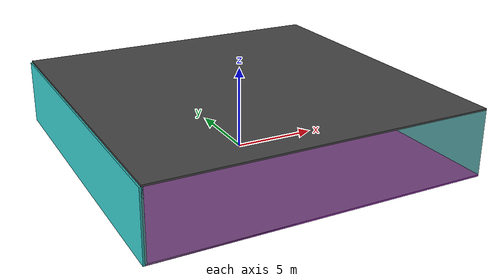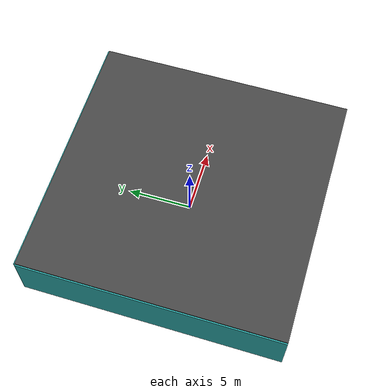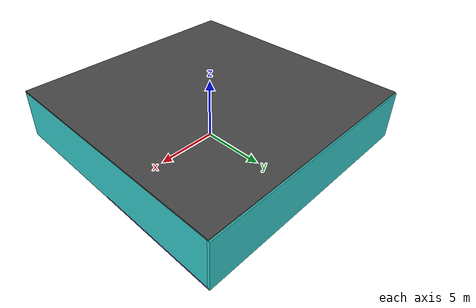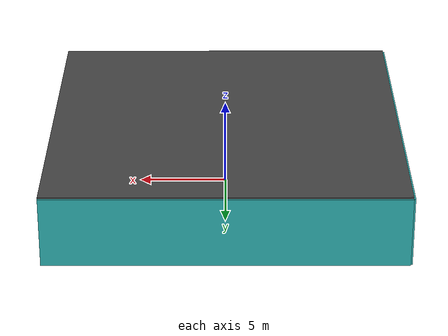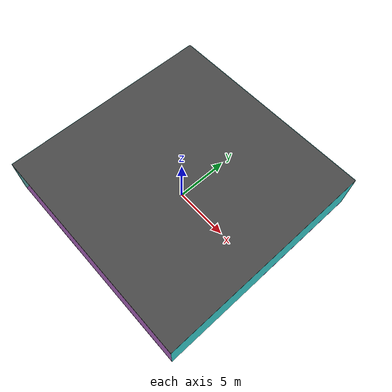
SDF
<sdf version="1.4">
 <world name="default">
  <physics type="ode">
   <max_step_size>0.001</max_step_size>
   <real_time_factor>1</real_time_factor>
   <real_time_update_rate>1000</real_time_update_rate>
   <gravity>0 0 -9.8</gravity>
  </physics>
  <scene><ambient>0.4 0.4 0.4 1</ambient><background>0.7 0.7 0.7 1</background><shadows>1</shadows></scene>
  <model name="Surrounding">
   <static>1</static>
   <link name="Ceiling">
    <collision name="Ceiling_Collision"><geometry><box><size>20 20 0.1</size></box></geometry></collision>
    <visual name="Ceiling_Visual">
     <geometry><box><size>20 20 0.1</size></box></geometry>
     <material>
      <script><uri>file://media/materials/scripts/gazebo.material</uri><name>Gazebo/Road</name></script>
     </material>
    </visual>
    <pose>0 0 4.05 0 0 0</pose>
   </link>
   <link name="Wall_South">
    <collision name="Wall_South_Collision">
     <geometry><box><size>20 0 4</size></box></geometry>
     <pose>0 0 2 0 -0 0</pose>
    </collision>
    <visual name="Wall_South_Visual">
     <pose>0 0 2 0 -0 0</pose>
     <geometry><box><size>20 0 4</size></box></geometry>
     <material>
      <script><uri>file://media/materials/scripts/gazebo.material</uri><name>Gazebo/GreyTransparent</name></script>
     </material>
    </visual>
    <velocity_decay><linear>0</linear><angular>0</angular></velocity_decay>
    <pose>0 -10 0 0 -0 0</pose>
   </link>
   <link name="Wall_East">
    <collision name="Wall_21_Collision">
     <geometry><box><size>20 0 4</size></box></geometry>
     <pose>0 0 2 0 -0 0</pose>
    </collision>
    <visual name="Wall_21_Visual">
     <pose>0 0 2 0 -0 0</pose>
     <geometry><box><size>20 0 4</size></box></geometry>
     <material>
      <script>
       <uri>file://media/materials/scripts/gazebo.material</uri>
       <name>Gazebo/TurquoiseGlowOutline</name>
      </script>
     </material>
    </visual>
    <velocity_decay><linear>0</linear><angular>0</angular></velocity_decay>
    <pose>10 0 0 0 -0 1.5708</pose>
   </link>
   <link name="Wall_North">
    <collision name="Wall_22_Collision">
     <geometry><box><size>20 0.2 4</size></box></geometry>
     <pose>0 0 2 0 -0 0</pose>
    </collision>
    <visual name="Wall_22_Visual">
     <pose>0 0 2 0 -0 0</pose>
     <geometry><box><size>20 0.2 4</size></box></geometry>
     <material>
      <script>
       <uri>file://media/materials/scripts/gazebo.material</uri>
       <name>Gazebo/TurquoiseGlowOutline</name>
      </script>
     </material>
    </visual>
    <velocity_decay><linear>0</linear><angular>0</angular></velocity_decay>
    <pose>0 10 0 0 -0 0</pose>
   </link>
   <link name="Wall_West">
    <collision name="Wall_23_Collision">
     <geometry><box><size>20 0.2 4</size></box></geometry>
     <pose>0 0 2 0 -0 0</pose>
    </collision>
    <visual name="Wall_23_Visual">
     <pose>0 0 2 0 -0 0</pose>
     <geometry><box><size>20 0.2 4</size></box></geometry>
     <material>
      <script>
       <uri>file://media/materials/scripts/gazebo.material</uri>
       <name>Gazebo/TurquoiseGlowOutline</name>
      </script>
     </material>
    </visual>
    <velocity_decay><linear>0</linear><angular>0</angular></velocity_decay>
    <pose>-10 0 0 0 0 -1.5708</pose>
   </link>
   <link name="Ground_link">
    <collision name="collision">
     <pose>0 0 .05 0 -0 0</pose>
     <geometry><box><size>20 20 0.1</size></box></geometry>
    </collision>
    <visual name="visual">
     <pose>0 0 .05 0 -0 0</pose>
     <geometry><box><size>20 20 0.1</size></box></geometry>
     <material>
      <script><uri>file://media/materials/scripts/gazebo.material</uri><name>Gazebo/PurpleGlow</name></script>
     </material>
    </visual>
   </link>
   <static>1</static>
  </model>
  <spherical_coordinates>
   <surface_model>EARTH_WGS84</surface_model>
   <latitude_deg>0</latitude_deg>
   <longitude_deg>0</longitude_deg>
   <elevation>0</elevation>
   <heading_deg>0</heading_deg>
  </spherical_coordinates>
  <light name="lightball_0" type="diffuse">
   <diffuse>0.8 0.8 0.8 1</diffuse>
   <specular>0.2 0.2 0.2 1</specular>
   <attenuation>
    <range>100</range>
    <constant>0.7</constant>
    <linear>0.01</linear>
    <quadratic>0.001</quadratic>
   </attenuation>
   <direction>-0.5 0.1 -0.9</direction>
   <pose>-6.33862992842 -1.30581812184 3.81801534282 0 0 0</pose>
  </light>
  <light name="lightball_1" type="diffuse">
   <diffuse>0.8 0.8 0.8 1</diffuse>
   <specular>0.2 0.2 0.2 1</specular>
   <attenuation>
    <range>100</range>
    <constant>0.7</constant>
    <linear>0.01</linear>
    <quadratic>0.001</quadratic>
   </attenuation>
   <direction>-0.5 0.1 -0.9</direction>
   <pose>9.23544801296 -4.5773940414 2.24529363592 0 0 0</pose>
  </light>
  <light name="lightball_2" type="diffuse">
   <diffuse>0.8 0.8 0.8 1</diffuse>
   <specular>0.2 0.2 0.2 1</specular>
   <attenuation>
    <range>100</range>
    <constant>0.7</constant>
    <linear>0.01</linear>
    <quadratic>0.001</quadratic>
   </attenuation>
   <direction>-0.5 0.1 -0.9</direction>
   <pose>-5.65257102474 -6.9161558224 2.29655629889 0 0 0</pose>
  </light>
  <light name="lightball_3" type="diffuse">
   <diffuse>0.8 0.8 0.8 1</diffuse>
   <specular>0.2 0.2 0.2 1</specular>
   <attenuation>
    <range>100</range>
    <constant>0.7</constant>
    <linear>0.01</linear>
    <quadratic>0.001</quadratic>
   </attenuation>
   <direction>-0.5 0.1 -0.9</direction>
   <pose>-2.58172265167 9.64015404992 2.11245981117 0 0 0</pose>
  </light>
  <light name="lightball_4" type="diffuse">
   <diffuse>0.8 0.8 0.8 1</diffuse>
   <specular>0.2 0.2 0.2 1</specular>
   <attenuation>
    <range>100</range>
    <constant>0.7</constant>
    <linear>0.01</linear>
    <quadratic>0.001</quadratic>
   </attenuation>
   <direction>-0.5 0.1 -0.9</direction>
   <pose>8.27926429337 9.52895446055 1.99885277685 0 0 0</pose>
  </light>
  <light name="lightball_5" type="diffuse">
   <diffuse>0.8 0.8 0.8 1</diffuse>
   <specular>0.2 0.2 0.2 1</specular>
   <attenuation>
    <range>100</range>
    <constant>0.7</constant>
    <linear>0.01</linear>
    <quadratic>0.001</quadratic>
   </attenuation>
   <direction>-0.5 0.1 -0.9</direction>
   <pose>-5.82156364919 -2.95161379467 3.89493562523 0 0 0</pose>
  </light>
  <light name="lightball_6" type="diffuse">
   <diffuse>0.8 0.8 0.8 1</diffuse>
   <specular>0.2 0.2 0.2 1</specular>
   <attenuation>
    <range>100</range>
    <constant>0.7</constant>
    <linear>0.01</linear>
    <quadratic>0.001</quadratic>
   </attenuation>
   <direction>-0.5 0.1 -0.9</direction>
   <pose>9.67209870447 9.14943462524 2.10729574962 0 0 0</pose>
  </light>
  <light name="lightball_7" type="diffuse">
   <diffuse>0.8 0.8 0.8 1</diffuse>
   <specular>0.2 0.2 0.2 1</specular>
   <attenuation>
    <range>100</range>
    <constant>0.7</constant>
    <linear>0.01</linear>
    <quadratic>0.001</quadratic>
   </attenuation>
   <direction>-0.5 0.1 -0.9</direction>
   <pose>3.07299232809 -2.73913151546 2.55626312968 0 0 0</pose>
  </light>
  <light name="lightball_8" type="diffuse">
   <diffuse>0.8 0.8 0.8 1</diffuse>
   <specular>0.2 0.2 0.2 1</specular>
   <attenuation>
    <range>100</range>
    <constant>0.7</constant>
    <linear>0.01</linear>
    <quadratic>0.001</quadratic>
   </attenuation>
   <direction>-0.5 0.1 -0.9</direction>
   <pose>-3.08041238305 -8.73029534897 0.821475222025 0 0 0</pose>
  </light>
  <include><uri>model://cabinet</uri><pose>-0.301530056291 -1.79709150514 0 0 0 0.892536934957</pose></include>
  <include><uri>model://table</uri><pose>-0.319549519225 8.13921897219 0 0 0 2.247997386</pose></include>
  <include>
   <uri>model://construction_cone</uri>
   <pose>1.88709651494 4.04895419131 0 0 0 2.06745548507</pose>
  </include>
  <include>
   <uri>model://textured_shapes</uri>
   <pose>5.31957308874 2.64666499932 0 0 0 2.74604918664</pose>
  </include>
 </world>
</sdf>

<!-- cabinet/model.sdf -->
<sdf version="1.5">
  <model name="cabinet">
    <static>true</static>
    <link name="cabinet_bottom_plate">
      <inertial>
        <pose>0 0 -1 0 0 0</pose>
        <inertia>
          <ixx>2.050000</ixx>
          <ixy>0</ixy>
          <ixz>0</ixz>
          <iyy>2.050000</iyy>
          <iyz>0</iyz>
          <izz>2.050000</izz>
        </inertia>
        <mass>25.000000</mass>
      </inertial>
      <collision name="cabinet_bottom_plate_geom">
        <pose>0 0 0.010000 0 0 0</pose>
        <geometry>
          <box>
            <size>0.450000 0.450000 0.020000</size>
          </box>
        </geometry>
      </collision>
      <visual name="cabinet_bottom_plate_geom_visual">
        <pose>0 0 0.010000 0 0 0</pose>
        <geometry>
          <box>
            <size>0.450000 0.450000 0.020000</size>
          </box>
        </geometry>
        <material>
          <script>
            <uri>model://media/materials/scripts/gazebo.material</uri>
            <name>Gazebo/Wood</name>
          </script>
        </material>
      </visual>
      <collision name="cabinet_bottom_plate_geom_cabinet_back_plate">
        <pose>0.235000 0 0.510000 0 0 0</pose>
        <geometry>
          <box>
            <size>0.020000 0.450000 1.020000</size>
          </box>
        </geometry>
      </collision>
      <visual name="cabinet_bottom_plate_geom_cabinet_back_plate_visual">
        <pose>0.235000 0 0.510000 0 0 0</pose>
        <geometry>
          <box>
            <size>0.020000 0.450000 1.020000</size>
          </box>
        </geometry>
        <material>
          <script>
            <uri>model://media/materials/scripts/gazebo.material</uri>
            <name>Gazebo/Wood</name>
          </script>
        </material>
      </visual>
      <collision name="cabinet_bottom_plate_geom_cabinet_left_plate">
        <pose>0 0.235000 0.510000 0 0 0</pose>
        <geometry>
          <box>
            <size>0.450000 0.020000 1.020000</size>
          </box>
        </geometry>
      </collision>
      <visual name="cabinet_bottom_plate_geom_cabinet_left_plate_visual">
        <pose>0 0.235000 0.510000 0 0 0</pose>
        <geometry>
          <box>
            <size>0.450000 0.020000 1.020000</size>
          </box>
        </geometry>
        <material>
          <script>
            <uri>model://media/materials/scripts/gazebo.material</uri>
            <name>Gazebo/Wood</name>
          </script>
        </material>
      </visual>
      <collision name="cabinet_bottom_plate_geom_cabinet_middle_plate">
        <pose>0 0 0.510000 0 0 0</pose>
        <geometry>
          <box>
            <size>0.450000 0.450000 0.020000</size>
          </box>
        </geometry>
      </collision>
      <visual name="cabinet_bottom_plate_geom_cabinet_middle_plate_visual">
        <pose>0 0 0.510000 0 0 0</pose>
        <geometry>
          <box>
            <size>0.450000 0.450000 0.020000</size>
          </box>
        </geometry>
        <material>
          <script>
            <uri>model://media/materials/scripts/gazebo.material</uri>
            <name>Gazebo/Wood</name>
          </script>
        </material>
      </visual>
      <collision name="cabinet_bottom_plate_geom_cabinet_right_plate">
        <pose>0 -0.235000 0.510000 0 0 0</pose>
        <geometry>
          <box>
            <size>0.450000 0.020000 1.020000</size>
          </box>
        </geometry>
      </collision>
      <visual name="cabinet_bottom_plate_geom_cabinet_right_plate_visual">
        <pose>0 -0.235000 0.510000 0 0 0</pose>
        <geometry>
          <box>
            <size>0.450000 0.020000 1.020000</size>
          </box>
        </geometry>
        <material>
          <script>
            <uri>model://media/materials/scripts/gazebo.material</uri>
            <name>Gazebo/Wood</name>
          </script>
        </material>
      </visual>
      <collision name="cabinet_bottom_plate_geom_cabinet_top_plate">
        <pose>0 0 1.010000 0 0 0</pose>
        <geometry>
          <box>
            <size>0.450000 0.450000 0.020000</size>
          </box>
        </geometry>
      </collision>
      <visual name="cabinet_bottom_plate_geom_cabinet_top_plate_visual">
        <pose>0 0 1.010000 0 0 0</pose>
        <geometry>
          <box>
            <size>0.450000 0.450000 0.020000</size>
          </box>
        </geometry>
        <material>
          <script>
            <uri>model://media/materials/scripts/gazebo.material</uri>
            <name>Gazebo/Wood</name>
          </script>
        </material>
      </visual>
    </link>
  </model>
</sdf>

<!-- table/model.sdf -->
<sdf version="1.5">
  <model name="table">
    <static>true</static>
    <link name="link">
      <collision name="surface">
        <pose>0 0 1.0 0 0 0</pose>
        <geometry>
          <box>
            <size>1.5 0.8 0.03</size>
          </box>
        </geometry>
        <surface>
          <friction>
            <ode>
              <mu>0.6</mu>
              <mu2>0.6</mu2>
            </ode>
          </friction>
        </surface>
      </collision>
      <visual name="visual1">
        <pose>0 0 1.0 0 0 0</pose>
        <geometry>
          <box>
            <size>1.5 0.8 0.03</size>
          </box>
        </geometry>
        <material>
          <script>
            <uri>model://media/materials/scripts/gazebo.material</uri>
            <name>Gazebo/Wood</name>
          </script>
        </material>
      </visual>
      <collision name="front_left_leg">
        <pose>0.68 0.38 0.5 0 0 0</pose>
        <geometry>
          <cylinder>
            <radius>0.02</radius>
            <length>1.0</length>
          </cylinder>
        </geometry>
      </collision>
      <visual name="front_left_leg">
        <pose>0.68 0.38 0.5 0 0 0</pose>
        <geometry>
          <cylinder>
            <radius>0.02</radius>
            <length>1.0</length>
          </cylinder>
        </geometry>
        <material>
          <script>
            <uri>model://media/materials/scripts/gazebo.material</uri>
            <name>Gazebo/Grey</name>
          </script>
        </material>
      </visual>
      <collision name="front_right_leg">
        <pose>0.68 -0.38 0.5 0 0 0</pose>
        <geometry>
          <cylinder>
            <radius>0.02</radius>
            <length>1.0</length>
          </cylinder>
        </geometry>
      </collision>
      <visual name="front_right_leg">
        <pose>0.68 -0.38 0.5 0 0 0</pose>
        <geometry>
          <cylinder>
            <radius>0.02</radius>
            <length>1.0</length>
          </cylinder>
        </geometry>
        <material>
          <script>
            <uri>model://media/materials/scripts/gazebo.material</uri>
            <name>Gazebo/Grey</name>
          </script>
        </material>
      </visual>
      <collision name="back_right_leg">
        <pose>-0.68 -0.38 0.5 0 0 0</pose>
        <geometry>
          <cylinder>
            <radius>0.02</radius>
            <length>1.0</length>
          </cylinder>
        </geometry>
      </collision>
      <visual name="back_right_leg">
        <pose>-0.68 -0.38 0.5 0 0 0</pose>
        <geometry>
          <cylinder>
            <radius>0.02</radius>
            <length>1.0</length>
          </cylinder>
        </geometry>
        <material>
          <script>
            <uri>model://media/materials/scripts/gazebo.material</uri>
            <name>Gazebo/Grey</name>
          </script>
        </material>
      </visual>
      <collision name="back_left_leg">
        <pose>-0.68 0.38 0.5 0 0 0</pose>
        <geometry>
          <cylinder>
            <radius>0.02</radius>
            <length>1.0</length>
          </cylinder>
        </geometry>
      </collision>
      <visual name="back_left_leg">
        <pose>-0.68 0.38 0.5 0 0 0</pose>
        <geometry>
          <cylinder>
            <radius>0.02</radius>
            <length>1.0</length>
          </cylinder>
        </geometry>
        <material>
          <script>
            <uri>model://media/materials/scripts/gazebo.material</uri>
            <name>Gazebo/Grey</name>
          </script>
        </material>
      </visual>
    </link>
  </model>
</sdf>

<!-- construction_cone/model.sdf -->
<sdf version="1.5">
  <model name="Construction Cone">
    <link name="link">
      <collision name="collision">
        <geometry>
          <mesh>
            <scale>10 10 10</scale>
            <uri>file://isr-testbed/construction_cone/meshes/construction_cone.dae</uri>
          </mesh>
        </geometry>
      </collision>
      <visual name="visual">
        <geometry>
          <mesh>
            <scale>10 10 10</scale>
            <uri>file://isr-testbed/construction_cone/meshes/construction_cone.dae</uri>
          </mesh>
        </geometry>
      </visual>
    </link>
  </model>
</sdf>

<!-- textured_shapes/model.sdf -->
<sdf version="1.6">
  <model name="textured_shapes">
    <pose>0 0 0.5 0 0 0</pose>
    <link name="box">
      <pose>0 -1.5 0 0 0 0</pose>
      <collision name="collision">
        <geometry>
          <box>
            <size>1 1 1</size>
          </box>
        </geometry>
      </collision>
      <visual name="visual">
        <geometry>
          <box>
            <size>1 1 1</size>
          </box>
        </geometry>
        <material>
          <script>
            <uri>model://../model_source/models/textured_shapes/materials/scripts</uri>
            <uri>model://../model_source/models/textured_shapes/materials/textures</uri>
            <name>TexturedShape/Squares</name>
          </script>
        </material>
      </visual>
    </link>
    <link name="sphere">
      <collision name="collision">
        <geometry>
          <sphere>
            <radius>0.5</radius>
          </sphere>
        </geometry>
      </collision>
      <visual name="visual">
        <geometry>
          <sphere>
            <radius>0.5</radius>
          </sphere>
        </geometry>
        <material>
          <script>
            <uri>model://../model_source/models/textured_shapes/materials/scripts</uri>
            <uri>model://../model_source/models/textured_shapes/materials/textures</uri>
            <name>TexturedShape/Squares</name>
          </script>
        </material>
      </visual>
    </link>
    <link name="cylinder">
      <pose>0 1.5 0 0 0 0</pose>
      <collision name="collision">
        <geometry>
          <cylinder>
            <radius>0.5</radius>
            <length>1</length>
          </cylinder>
        </geometry>
      </collision>
      <visual name="visual">
        <geometry>
          <cylinder>
            <radius>0.5</radius>
            <length>1</length>
          </cylinder>
        </geometry>
        <material>
          <script>
            <uri>model://../model_source/models/textured_shapes/materials/scripts</uri>
            <uri>model://../model_source/models/textured_shapes/materials/textures</uri>
            <name>TexturedShape/Squares</name>
          </script>
        </material>
      </visual>
    </link>
  </model>
</sdf>
